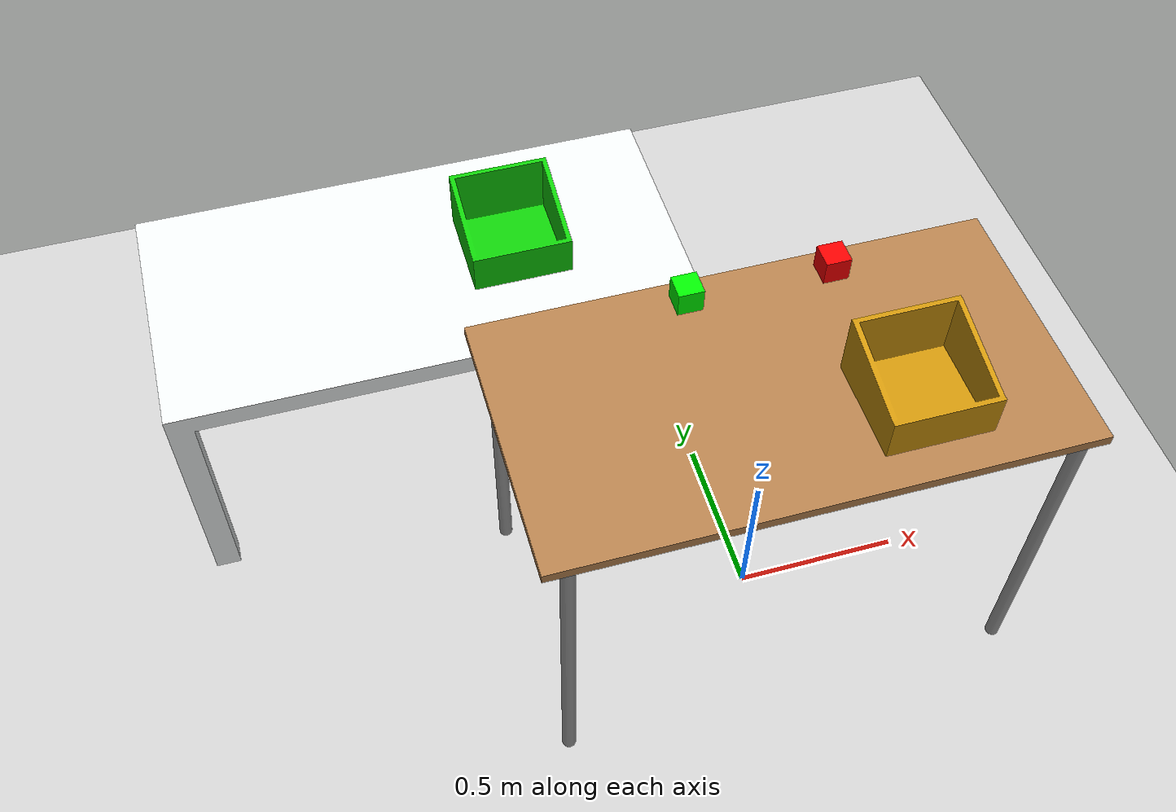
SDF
<sdf version="1.9">
 <world name="simulation_world">
  <physics name="1ms" type="ignored">
   <max_step_size>0.001</max_step_size>
   <real_time_factor>1</real_time_factor>
   <real_time_update_rate>1000</real_time_update_rate>
  </physics>
  <plugin name="ignition::gazebo::systems::Physics" filename="ignition-gazebo-physics-system"/>
  <plugin name="ignition::gazebo::systems::Sensors" filename="ignition-gazebo-sensors-system">
   <render_engine>ogre</render_engine>
  </plugin>
  <plugin name="ignition::gazebo::systems::UserCommands" filename="ignition-gazebo-user-commands-system"/>
  <plugin name="ignition::gazebo::systems::SceneBroadcaster" filename="ignition-gazebo-scene-broadcaster-system"/>
  <scene>
   <ambient>1 1 1 1</ambient>
   <background>0.8 0.8 0.8 1</background>
   <grid>true</grid>
   <shadows>true</shadows>
  </scene>
  <gravity>0 0 -9.8</gravity>
  <magnetic_field>6e-06 2.3e-05 -4.2e-05</magnetic_field>
  <atmosphere type="adiabatic"/>
  <model name="ground_plane">
   <static>true</static>
   <link name="link">
    <collision name="collision">
     <geometry><plane><normal>0 0 1</normal><size>100 100</size></plane></geometry>
    </collision>
    <visual name="visual">
     <geometry><plane><normal>0 0 1</normal><size>100 100</size></plane></geometry>
     <material>
      <ambient>0.8 0.8 0.8 1</ambient>
      <diffuse>0.8 0.8 0.8 1</diffuse>
      <specular>0.8 0.8 0.8 1</specular>
     </material>
    </visual>
    <inertial>
     <mass>1</mass>
     <inertia><ixx>1</ixx><ixy>0</ixy><ixz>0</ixz><iyy>1</iyy><iyz>0</iyz><izz>1</izz></inertia>
    </inertial>
   </link>
  </model>
  <model name="red_cube">
   <pose>0.2 0.2 1.2 0 -0 0</pose>
   <link name="box_link">
    <inertial>
     <inertia><ixx>1</ixx><ixy>0</ixy><ixz>0</ixz><iyy>1</iyy><iyz>0</iyz><izz>1</izz></inertia>
     <mass>0.5</mass>
    </inertial>
    <collision name="box_collision"><geometry><box><size>0.07 0.07 0.07</size></box></geometry></collision>
    <visual name="box_visual">
     <geometry><box><size>0.07 0.07 0.07</size></box></geometry>
     <material><ambient>1 0 0 1</ambient><diffuse>1 0 0 1</diffuse><specular>1 0 0 1</specular></material>
    </visual>
   </link>
   <static>false</static>
  </model>
  <model name="green_cube">
   <pose>-0.2 0.2 1.2 0 -0 0</pose>
   <link name="box_link">
    <inertial>
     <inertia><ixx>1</ixx><ixy>0</ixy><ixz>0</ixz><iyy>1</iyy><iyz>0</iyz><izz>1</izz></inertia>
     <mass>0.5</mass>
    </inertial>
    <collision name="box_collision"><geometry><box><size>0.07 0.07 0.07</size></box></geometry></collision>
    <visual name="box_visual">
     <geometry><box><size>0.07 0.07 0.07</size></box></geometry>
     <material><ambient>0 1 0 1</ambient><diffuse>0 1 0 1</diffuse><specular>0 1 0 1</specular></material>
    </visual>
   </link>
   <static>false</static>
  </model>
  <include>
   <uri>file:///home/muneeb/Documents/Zero2RoboticArm-6_DOF_Robotic_Arm_MicroROS_ROS2/brainswarm_ws/src/bras_robot_description/models/yellow_target/</uri>
   <name>yellow_target</name>
   <pose>0.32 -0.15 1.01 -0 -0 -1.57</pose>
  </include>
  <include>
   <uri>file:///home/muneeb/Documents/Zero2RoboticArm-6_DOF_Robotic_Arm_MicroROS_ROS2/brainswarm_ws/src/bras_robot_description/models/green_target/</uri>
   <name>green_target</name>
   <pose>-0.5 0.9 0.75 -0 -0 -1.57</pose>
  </include>
  <include>
   <uri>file:///home/muneeb/Documents/Zero2RoboticArm-6_DOF_Robotic_Arm_MicroROS_ROS2/brainswarm_ws/src/bras_robot_description/models/target_table/</uri>
   <name>target_table</name>
   <pose>-0.8 0.9 0 -0 -0 0</pose>
  </include>
  <include>
   <uri>file:///home/muneeb/Documents/Zero2RoboticArm-6_DOF_Robotic_Arm_MicroROS_ROS2/brainswarm_ws/src/bras_robot_description/models/table/</uri>
   <name>table</name>
  </include>
  <light name="sun" type="directional">
   <pose>0 0 10 0 -0 0</pose>
   <intensity>1</intensity>
   <direction>-0.5 0.1 -0.9</direction>
   <diffuse>0.8 0.8 0.8 1</diffuse>
   <specular>0.8 0.8 0.8 1</specular>
   <attenuation>
    <range>1000</range>
    <linear>0.01</linear>
    <constant>0.90000000000000002</constant>
    <quadratic>0.001</quadratic>
   </attenuation>
   <spot><inner_angle>0</inner_angle><outer_angle>0</outer_angle><falloff>0</falloff></spot>
  </light>
 </world>
</sdf>

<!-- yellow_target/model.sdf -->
<sdf version='1.6'>
  <model name='yellow_target'>
    <static>true</static>
    <link name="link">
      <self_collide>0</self_collide>
      <enable_wind>0</enable_wind>
      <kinematic>0</kinematic>
      <pose frame=''>0 0 0 0 -0 0</pose>
      <gravity>1</gravity>
      <inertial>
        <mass>1</mass>
        <pose frame=''>0 0 0 0 -0 0</pose>
        <inertia>
          <ixx>1</ixx>
          <ixy>0</ixy>
          <ixz>0</ixz>
          <iyy>1</iyy>
          <iyz>0</iyz>
          <izz>1</izz>
        </inertia>
      </inertial>
      <visual name='visual'>
        <pose frame=''>0 0 0.01 0 -0 0</pose>
        <geometry>
          <mesh>
            <scale>0.5 0.5 0.5</scale>
            <uri>file:///home/muneeb/Public/robotics_ws/src/bras_robot_description/models/yellow_target/meshes/yellow_target.dae</uri>
          </mesh>
        </geometry>
      </visual>
            <collision name='front_wall'>
        <laser_retro>0</laser_retro>
        <max_contacts>10</max_contacts>
        <pose frame=''>0.144 0 0 0 -0 0</pose>
        <geometry>
          <mesh>
            <scale>0.5 0.5 0.5</scale>
            <uri>file:///home/muneeb/Public/robotics_ws/src/bras_robot_description/models/yellow_target/meshes/yellow_target.dae</uri>
          </mesh>
        </geometry>
        <surface>
          <friction>
            <ode>
              <mu>1</mu>
              <mu2>1</mu2>
              <fdir1>0 0 0</fdir1>
              <slip1>0</slip1>
              <slip2>0</slip2>
            </ode>
            <torsional>
              <coefficient>1</coefficient>
              <patch_radius>0</patch_radius>
              <surface_radius>0</surface_radius>
              <use_patch_radius>1</use_patch_radius>
              <ode>
                <slip>0</slip>
              </ode>
            </torsional>
          </friction>
          <bounce>
            <restitution_coefficient>0</restitution_coefficient>
            <threshold>1e+06</threshold>
          </bounce>
          <contact>
            <collide_without_contact>0</collide_without_contact>
            <collide_without_contact_bitmask>1</collide_without_contact_bitmask>
            <collide_bitmask>1</collide_bitmask>
            <ode>
              <soft_cfm>0</soft_cfm>
              <soft_erp>0.2</soft_erp>
              <kp>1e+13</kp>
              <kd>1</kd>
              <max_vel>0.01</max_vel>
              <min_depth>0</min_depth>
            </ode>
            <bullet>
              <split_impulse>1</split_impulse>
              <split_impulse_penetration_threshold>-0.01</split_impulse_penetration_threshold>
              <soft_cfm>0</soft_cfm>
              <soft_erp>0.2</soft_erp>
              <kp>1e+13</kp>
              <kd>1</kd>
            </bullet>
          </contact>
        </surface>
      </collision>
    </link>
  </model>
</sdf>

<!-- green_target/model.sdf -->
<sdf version='1.6'>
  <model name='green_target'>
    <static>False</static>
    <link name="link">
      <self_collide>0</self_collide>
      <enable_wind>0</enable_wind>
      <kinematic>0</kinematic>
      <pose frame=''>0 0 0 0 -0 0</pose>
      <gravity>1</gravity>
      <inertial>
        <mass>1</mass>
        <pose frame=''>0 0 0 0 -0 0</pose>
        <inertia>
          <ixx>1</ixx>
          <ixy>0</ixy>
          <ixz>0</ixz>
          <iyy>1</iyy>
          <iyz>0</iyz>
          <izz>1</izz>
        </inertia>
      </inertial>
      <visual name='visual'>
        <pose frame=''>0 0 0.01 0 -0 0</pose>
        <geometry>
          <mesh>
            <scale>0.5 0.5 0.5</scale>
            <uri>file:///home/muneeb/Public/robotics_ws/src/bras_robot_description/models/green_target/meshes/green_target.dae</uri>
          </mesh>
        </geometry>
      </visual>
      <collision name='front_wall'>
        <laser_retro>0</laser_retro>
        <max_contacts>10</max_contacts>
        <geometry>
          <mesh>
            <scale>0.5 0.5 0.5</scale>
            <uri>file:///home/muneeb/Public/robotics_ws/src/bras_robot_description/models/green_target/meshes/green_target.dae</uri>
          </mesh>
        </geometry>
        <surface>
          <friction>
            <ode>
              <mu>1</mu>
              <mu2>1</mu2>
              <fdir1>0 0 0</fdir1>
              <slip1>0</slip1>
              <slip2>0</slip2>
            </ode>
            <torsional>
              <coefficient>1</coefficient>
              <patch_radius>0</patch_radius>
              <surface_radius>0</surface_radius>
              <use_patch_radius>1</use_patch_radius>
              <ode>
                <slip>0</slip>
              </ode>
            </torsional>
          </friction>
          <bounce>
            <restitution_coefficient>0</restitution_coefficient>
            <threshold>1e+06</threshold>
          </bounce>
          <contact>
            <collide_without_contact>0</collide_without_contact>
            <collide_without_contact_bitmask>1</collide_without_contact_bitmask>
            <collide_bitmask>1</collide_bitmask>
            <ode>
              <soft_cfm>0</soft_cfm>
              <soft_erp>0.2</soft_erp>
              <kp>1e+13</kp>
              <kd>1</kd>
              <max_vel>0.01</max_vel>
              <min_depth>0</min_depth>
            </ode>
            <bullet>
              <split_impulse>1</split_impulse>
              <split_impulse_penetration_threshold>-0.01</split_impulse_penetration_threshold>
              <soft_cfm>0</soft_cfm>
              <soft_erp>0.2</soft_erp>
              <kp>1e+13</kp>
              <kd>1</kd>
            </bullet>
          </contact>
        </surface>
      </collision>
    </link>
  </model>
</sdf>

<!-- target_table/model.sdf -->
<sdf version='1.6'>
  <model name='target_table'>
    <link name='link'>
      <self_collide>0</self_collide>
      <enable_wind>0</enable_wind>
      <kinematic>0</kinematic>
      <pose frame=''>0 0 0 0 -0 0</pose>
      <gravity>1</gravity>
      <inertial>
        <mass>1</mass>
        <pose frame=''>0 0 0 0 -0 0</pose>
        <inertia>
          <ixx>1</ixx>
          <ixy>0</ixy>
          <ixz>0</ixz>
          <iyy>1</iyy>
          <iyz>0</iyz>
          <izz>1</izz>
        </inertia>
      </inertial>
      <visual name='visual'>
        <pose frame=''>0 0 0.73 0 -0 1.57</pose>
        <geometry>
          <mesh>
            <scale>1 1 1</scale>
            <uri>file:///home/muneeb/Public/robotics_ws/src/bras_robot_description/models/target_table/meshes/target_table.dae</uri>
          </mesh>
        </geometry>
      </visual>
      <collision name='collision_0'>
        <laser_retro>0</laser_retro>
        <max_contacts>10</max_contacts>
        <pose frame=''>0 0 0.73 0 -0 0</pose>
        <geometry>
          <box>
            <size>0.8 1.6 0.06</size>
          </box>
        </geometry>
        <surface>
          <friction>
            <ode>
              <mu>1</mu>
              <mu2>1</mu2>
              <fdir1>0 0 0</fdir1>
              <slip1>0</slip1>
              <slip2>0</slip2>
            </ode>
            <torsional>
              <coefficient>1</coefficient>
              <patch_radius>0</patch_radius>
              <surface_radius>0</surface_radius>
              <use_patch_radius>1</use_patch_radius>
              <ode>
                <slip>0</slip>
              </ode>
            </torsional>
          </friction>
          <bounce>
            <restitution_coefficient>0</restitution_coefficient>
            <threshold>1e+06</threshold>
          </bounce>
          <contact>
            <collide_without_contact>0</collide_without_contact>
            <collide_without_contact_bitmask>1</collide_without_contact_bitmask>
            <collide_bitmask>1</collide_bitmask>
            <ode>
              <soft_cfm>0</soft_cfm>
              <soft_erp>0.2</soft_erp>
              <kp>1e+13</kp>
              <kd>1</kd>
              <max_vel>0.01</max_vel>
              <min_depth>0</min_depth>
            </ode>
            <bullet>
              <split_impulse>1</split_impulse>
              <split_impulse_penetration_threshold>-0.01</split_impulse_penetration_threshold>
              <soft_cfm>0</soft_cfm>
              <soft_erp>0.2</soft_erp>
              <kp>1e+13</kp>
              <kd>1</kd>
            </bullet>
          </contact>
        </surface>
      </collision>
    </link>
    <static>1</static>
    <allow_auto_disable>1</allow_auto_disable>
  </model>
</sdf>

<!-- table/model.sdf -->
<sdf version="1.5">
  <model name="table">
    <static>true</static>
    <link name="link">
      <collision name="surface">
        <pose>0 0 1.0 0 0 0</pose>
        <geometry>
          <box>
            <size>1.5 0.8 0.03</size>
          </box>
        </geometry>
        <surface>
          <friction>
            <ode>
              <mu>0.6</mu>
              <mu2>0.6</mu2>
            </ode>
          </friction>
        </surface>
      </collision>
      <visual name="visual1">
        <pose>0 0 1.0 0 0 0</pose>
        <geometry>
          <box>
            <size>1.5 0.8 0.03</size>
          </box>
        </geometry>
        <material>
          <script>
            <uri>model://media/materials/scripts/gazebo.material</uri>
            <name>Gazebo/Wood</name>
          </script>
        </material>
      </visual>
      <collision name="front_left_leg">
        <pose>0.68 0.38 0.5 0 0 0</pose>
        <geometry>
          <cylinder>
            <radius>0.02</radius>
            <length>1.0</length>
          </cylinder>
        </geometry>
      </collision>
      <visual name="front_left_leg">
        <pose>0.68 0.38 0.5 0 0 0</pose>
        <geometry>
          <cylinder>
            <radius>0.02</radius>
            <length>1.0</length>
          </cylinder>
        </geometry>
        <material>
          <script>
            <uri>model://media/materials/scripts/gazebo.material</uri>
            <name>Gazebo/Grey</name>
          </script>
        </material>
      </visual>
      <collision name="front_right_leg">
        <pose>0.68 -0.38 0.5 0 0 0</pose>
        <geometry>
          <cylinder>
            <radius>0.02</radius>
            <length>1.0</length>
          </cylinder>
        </geometry>
      </collision>
      <visual name="front_right_leg">
        <pose>0.68 -0.38 0.5 0 0 0</pose>
        <geometry>
          <cylinder>
            <radius>0.02</radius>
            <length>1.0</length>
          </cylinder>
        </geometry>
        <material>
          <script>
            <uri>model://media/materials/scripts/gazebo.material</uri>
            <name>Gazebo/Grey</name>
          </script>
        </material>
      </visual>
      <collision name="back_right_leg">
        <pose>-0.68 -0.38 0.5 0 0 0</pose>
        <geometry>
          <cylinder>
            <radius>0.02</radius>
            <length>1.0</length>
          </cylinder>
        </geometry>
      </collision>
      <visual name="back_right_leg">
        <pose>-0.68 -0.38 0.5 0 0 0</pose>
        <geometry>
          <cylinder>
            <radius>0.02</radius>
            <length>1.0</length>
          </cylinder>
        </geometry>
        <material>
          <script>
            <uri>model://media/materials/scripts/gazebo.material</uri>
            <name>Gazebo/Grey</name>
          </script>
        </material>
      </visual>
      <collision name="back_left_leg">
        <pose>-0.68 0.38 0.5 0 0 0</pose>
        <geometry>
          <cylinder>
            <radius>0.02</radius>
            <length>1.0</length>
          </cylinder>
        </geometry>
      </collision>
      <visual name="back_left_leg">
        <pose>-0.68 0.38 0.5 0 0 0</pose>
        <geometry>
          <cylinder>
            <radius>0.02</radius>
            <length>1.0</length>
          </cylinder>
        </geometry>
        <material>
          <script>
            <uri>model://media/materials/scripts/gazebo.material</uri>
            <name>Gazebo/Grey</name>
          </script>
        </material>
      </visual>
    </link>
  </model>
</sdf>
